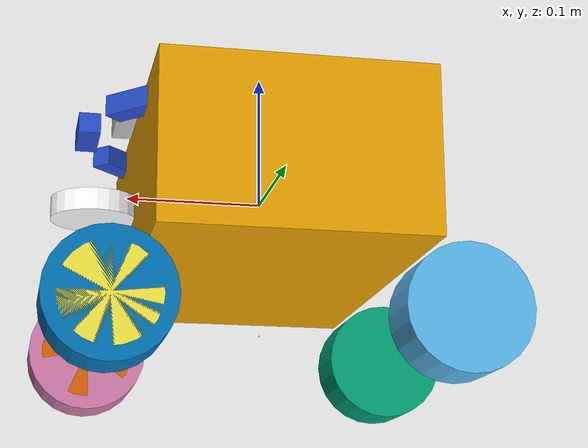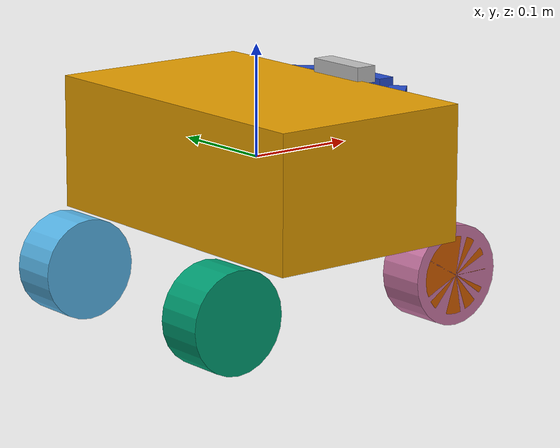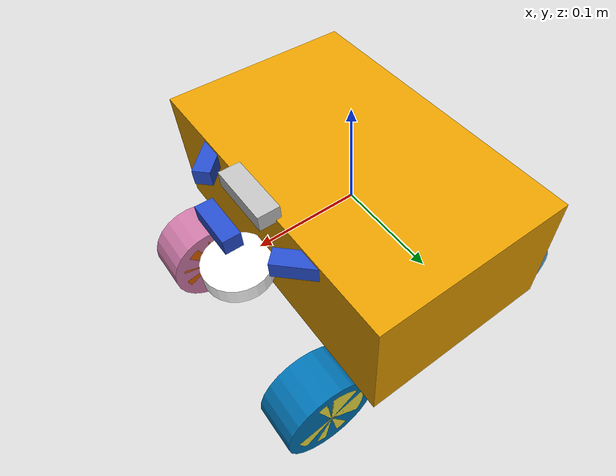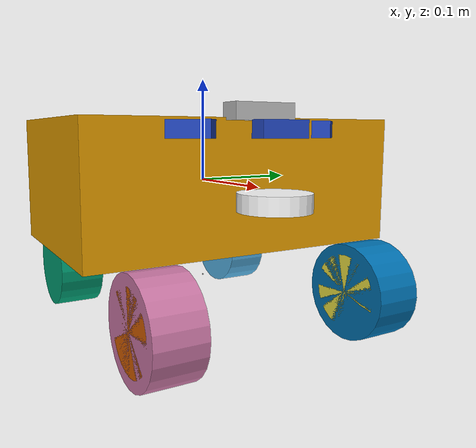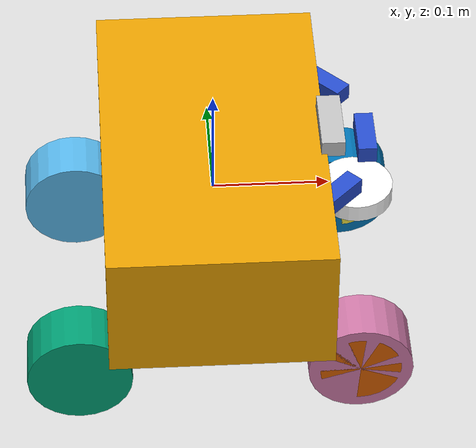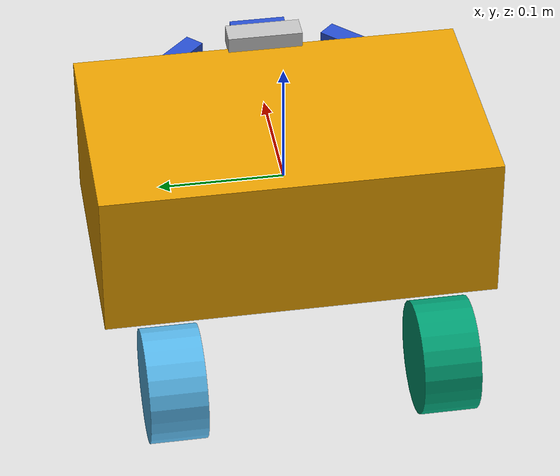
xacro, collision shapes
<?xml version="1.0"?>
<!--Auto: Zhui Li-->
<!--E-Mail: lz554113510@gmail.com -->
<!--Company: Institut für Intermodale Transport- und Logistiksysteme in Technische Universität Braunschweig -->

<robot name="limo_ackermann" xmlns:xacro="http://www.ros.org/wiki/xacro">

    <xacro:include filename="$(find limo_car)/gazebo/ackermann.xacro" />
    <xacro:include filename="$(find limo_car)/gazebo/sensor.xacro" />
    <xacro:limo_ackermann />
    <link name="base_footprint"/>
       <joint name="base_footprint_joint" type="fixed">
       <parent link="base_footprint"/>
       <child link="base_link"/>
       <origin xyz="0.0 0.0 0.0" rpy="0 0 0"/>
    </joint>

    <!-- ************************* Laser ****************************** -->
    <xacro:gazebo_laser frame_prefix="laser" />

    <joint name="laser_joint" type="fixed">
        <origin xyz="0.1236 0 -0.01" rpy="0 0 0"/>
        <parent link="base_link"/>
        <child link="laser_link"/>
    </joint>
    <!-- ************************* Depth-camera *********************** -->
    <xacro:gazebo_depth_camera frame_prefix="depth_camera" />

    <joint name="depth_camera_joint" type="fixed">
        <origin xyz="0.1 0 0.065" rpy="0 0 0"/>
        <parent link="base_link"/>
        <child link="depth_camera_link"/>
    </joint>
    <!-- ************************* IMU ******************************** -->
    <xacro:gazebo_imu frame_prefix="imu" />

    <joint name="imu_joint" type="fixed">
        <origin xyz="0.0 0 -0.1" rpy="0 0 0"/>
        <parent link="base_link"/>
        <child link="imu_link"/>
    </joint>
    <!-- ************************* Front Ultrasonic ******************* -->
    <xacro:gazebo_ultrasonic_front frame_prefix="ultrasonic_front" />
    <joint name="ultrasonic_front_joint" type="fixed">
        <origin xyz="0.13 0.0 0.05" rpy="0 0 0"/>
        <parent link="base_link"/>
        <child link="ultrasonic_front_link"/>
    </joint>

    <!-- ************************* Left Ultrasonic ******************* -->
    <xacro:gazebo_ultrasonic_left frame_prefix="ultrasonic_left" />
    <joint name="ultrasonic_left_joint" type="fixed">
        <origin xyz="0.10 0.07 0.05" rpy="0 0 0.7854"/>
        <parent link="base_link"/>
        <child link="ultrasonic_left_link"/>
    </joint>

    <!-- ************************* Right Ultrasonic ******************* -->
    <xacro:gazebo_ultrasonic_right frame_prefix="ultrasonic_right" />
    <joint name="ultrasonic_right_joint" type="fixed">
        <origin xyz="0.10 -0.07 0.05" rpy="0 0 -0.7854"/>
        <parent link="base_link"/>
        <child link="ultrasonic_right_link"/>
    </joint>
</robot>

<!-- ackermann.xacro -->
<!--Auto: Zhui Li-->
<!--E-Mail: lz554113510@gmail.com -->
<!--Company: Institut für Intermodale Transport- und Logistiksysteme in Technische Universität Braunschweig -->

<robot name="limo_ackermann" xmlns:xacro="http://www.ros.org/wiki/xacro">

    <!-- ******************************** Paramenten zu definieren ************************************* -->
    <!-- definiert Value -->
    <xacro:property name="M_PI" value="3.14159"/>

    <!-- das Value sind all gemessen -->
    <xacro:property name="base_mass" value="4.34"/>
    <xacro:property name="base_x_size" value="0.19" />
    <xacro:property name="base_y_size" value="0.31" />
    <xacro:property name="base_z_size" value="0.12" />

    <xacro:property name="wheelbase" value="0.24"/>
    <xacro:property name="track" value="0.168"/>
    <xacro:property name="wheel_vertical_offset" value="-0.10" />

    <xacro:property name="wheel_mass" value="0.5" />
    <xacro:property name="wheel_length" value="0.045" />
    <xacro:property name="wheel_radius" value="0.045" />

    <!-- definieren die Macro-Function für die Rechnungen der Matrizen für Trägheitsmoment-->
    <!-- Zylinder -->
    <xacro:macro name="cylinder_inertial_matrix" params="m r h">
        <inertial>
            <origin xyz="0.0 0.0 0.0" />
            <mass value="${m}" />
            <inertia ixx="${m*(3*r*r+h*h)/12}" ixy = "0" ixz = "0"
                     iyy="${m*(3*r*r+h*h)/12}" iyz = "0"
                     izz="${m*r*r/2}" />
        </inertial>
    </xacro:macro>
    <!-- Quader -->
    <xacro:macro name="box_inertial_matrix" params="m w l h">
        <inertial>
            <origin xyz="0.0 0.0 0.0" />
            <mass value="${m}" />
            <inertia ixx="${m*(w*w+h*h)/12}" ixy = "0" ixz = "0"
                     iyy="${m*(h*h+l*l)/12}" iyz = "0"
                     izz="${m*(w*w+l*l)/12}" />
        </inertial>
    </xacro:macro>

    <!-- **************************** Makrofunktion zu definieren ************************************** -->
    <!-- Makrofunktion für vorderen Räder mit Steuerscharnier-->
    <!-- front left -->
    <xacro:macro name="limo_left_steering_hinge" params="parent_prefix wheel_prefix *joint_pose">
        <link name="${wheel_prefix}_steer_link">
            <inertial>
                <!-- diese Daten kommen aus den Herstellern -->
                <mass value="0.25" />
                <inertia ixx="0.00525" ixy="0" ixz="0" iyy="0.00035" iyz="0" izz="0.00525" />
                <origin xyz="0 0 0" />
            </inertial>
            <visual>
                <origin xyz="0 0 0" rpy="0 0 0" />
                <geometry>
                    <!-- es ist sehr klein, einfach als Klein definiert wird -->
                    <cylinder length="0.0001" radius="0.0001" />
                </geometry>
            </visual>
            <collision>
                <origin xyz="0 ${wheel_length/2} 0" rpy="${M_PI/2} 0 0" />
                <geometry>
                    <cylinder length="${wheel_length}" radius="${wheel_radius-0.01}" />
                </geometry>
            </collision>
        </link>

        <joint name="${wheel_prefix}_steer_joint" type="revolute">
            <parent link="${parent_prefix}"/>
            <child link="${wheel_prefix}_steer_link"/>
            <xacro:insert_block name="joint_pose"/>
            <axis xyz="0 0 1" />
            <!-- Paramenten von Herstellern -->
            <limit lower="-0.523598767" upper="0.523598767" effort="5" velocity="0.5" />
            <dynamics damping="1.0" friction="2.0"/>
        </joint>

        <transmission name="${wheel_prefix}_hinge_trans" type="SimpleTransmission">
            <type>transmission_interface/SimpleTransmission</type>
            <actuator name="${wheel_prefix}_hinge_motor">
                <hardwareInterface>hardware_interface/EffortJointInterface</hardwareInterface>
                <mechanicalReduction>1</mechanicalReduction>
            </actuator>
            <joint name="${wheel_prefix}_steer_joint">
                <hardwareInterface>hardware_interface/EffortJointInterface</hardwareInterface>
            </joint>
        </transmission>

        <link name="${wheel_prefix}_wheel_link">
            <visual>
                <origin xyz="0 0 0" rpy="0 0 0" />
                <geometry>
                    <mesh filename="package://limo_car/meshes/limo_wheel.dae" scale="1.2 1.2 1.2"/>
                </geometry>
            </visual>
            <collision>
                <origin xyz="0 ${wheel_length/2} 0" rpy="${M_PI/2} 0 0" />
                <geometry>
                    <cylinder length="${wheel_length}" radius="${wheel_radius}" />
                </geometry>
            </collision>
            <xacro:cylinder_inertial_matrix  m="${wheel_mass}" r="${wheel_radius}"  h="${wheel_length}" />
        </link>

        <joint name="${wheel_prefix}_wheel_joint" type="continuous">
            <parent link="${wheel_prefix}_steer_link"/>
            <child link="${wheel_prefix}_wheel_link"/>
            <origin xyz="0 0 0" rpy="0 0 0" />
            <axis xyz="0 1 0"/>
        </joint>

        <transmission name="${wheel_prefix}_wheel_trans" type="SimpleTransmission">
            <type>transmission_interface/SimpleTransmission</type>
            <actuator name="${wheel_prefix}_wheel_motor">
                <!-- Type für den Topic(Paramenten) -->
                <hardwareInterface>hardware_interface/VelocityJointInterface</hardwareInterface>
                <mechanicalReduction>1</mechanicalReduction>
            </actuator>
            <joint name="${wheel_prefix}_wheel_joint">
                <hardwareInterface>hardware_interface/VelocityJointInterface</hardwareInterface>
            </joint>
        </transmission>
    </xacro:macro>

    <!-- front right -->
    <xacro:macro name="limo_right_steering_hinge" params="parent_prefix wheel_prefix *joint_pose">
        <link name="${wheel_prefix}_steer_link">
            <inertial>
                <mass value="0.25" />
                <inertia ixx="0.00525" ixy="0" ixz="0" iyy="0.00035" iyz="0" izz="0.00525" />
                <origin xyz="0 0 0" />
            </inertial>
            <visual>
                <origin xyz="0 0 0" rpy="0 0 0" />
                <geometry>
                    <cylinder length="0.0001" radius="0.0001" />
                </geometry>
            </visual>
            <collision>
                <origin xyz="0 ${wheel_length/2} 0" rpy="${M_PI/2} 0 0" />
                <geometry>
                    <cylinder length="${wheel_length}" radius="${wheel_radius-0.01}" />
                </geometry>
            </collision>
        </link>

        <joint name="${wheel_prefix}_steer_joint" type="revolute">
            <parent link="${parent_prefix}"/>
            <child link="${wheel_prefix}_steer_link"/>
            <xacro:insert_block name="joint_pose"/>
            <axis xyz="0 0 -1"/>
            <limit lower="-0.523598767" upper="0.523598767" effort="5" velocity="0.5" />
            <dynamics damping="1.0" friction="2.0"/>
        </joint>

        <transmission name="${wheel_prefix}_hinge_trans" type="SimpleTransmission">
            <type>transmission_interface/SimpleTransmission</type>
            <actuator name="${wheel_prefix}_hinge_motor">
                <hardwareInterface>hardware_interface/EffortJointInterface</hardwareInterface>
                <mechanicalReduction>1</mechanicalReduction>
            </actuator>
            <joint name="${wheel_prefix}_steer_joint">
                <hardwareInterface>hardware_interface/EffortJointInterface</hardwareInterface>
            </joint>
        </transmission>

        <link name="${wheel_prefix}_wheel_link">
            <visual>
                <origin xyz="0 0 0" rpy="0 0 0" />
                <geometry>
                    <mesh filename="package://limo_car/meshes/limo_wheel.dae" scale="1.2 1.2 1.2" />
                </geometry>
            </visual>
            <collision>
                <origin xyz="0 ${wheel_length/2} 0" rpy="${M_PI/2} 0 0" />
                <geometry>
                    <cylinder length="${wheel_length}" radius="${wheel_radius}" />
                </geometry>
            </collision>
            <xacro:cylinder_inertial_matrix  m="${wheel_mass}" r="${wheel_radius}"  h="${wheel_length}" />
        </link>

        <joint name="${wheel_prefix}_wheel_joint" type="continuous">
            <parent link="${wheel_prefix}_steer_link"/>
            <child link="${wheel_prefix}_wheel_link"/>
            <origin xyz="0 0 0" rpy="0 0  0" />
            <axis xyz="0 -1 0"/>
        </joint>

        <transmission name="${wheel_prefix}_wheel_trans" type="SimpleTransmission">
            <type>transmission_interface/SimpleTransmission</type>
            <actuator name="${wheel_prefix}_wheel_motor">
                <!-- Type für den Topic(Paramenten) -->
                <hardwareInterface>hardware_interface/VelocityJointInterface</hardwareInterface>
                <mechanicalReduction>1</mechanicalReduction>
            </actuator>
            <joint name="${wheel_prefix}_wheel_joint">
                <hardwareInterface>hardware_interface/VelocityJointInterface</hardwareInterface>
            </joint>
        </transmission>
    </xacro:macro>

    <!-- ***************************************** Base zu bauen *************************************** -->
    <!-- erstellt Hauptanteil des Modells, definiert ein Nullpunkt, um Modell aufzubauen. Es ist einfach für weitere
    Darstellungspostion in Simulation-Umgebung -->
    <xacro:macro name="limo_ackermann">

        <!-- herstellt base_link -->
        <link name="base_link">
            <visual>
                <origin xyz="0 0 -0.15" rpy="0 0 ${M_PI/2}" />
                <geometry>
                    <!-- Modell von Hersteller, aber es ist kleiner als realen Produkt, da die Skale vergrößert wird -->
                    <mesh filename="package://limo_car/meshes/limo_base.dae" scale="1.2 1.2 1.2" />
                </geometry>
            </visual>
            <!-- Modell für physikalische Kollision zu modellieren. -->
            <collision>
                <origin xyz="0 0 0" rpy="0 0 0" />
                <geometry>
                    <box size="${base_x_size} ${base_y_size} ${base_z_size}"/>
                </geometry>
            </collision>
            <xacro:box_inertial_matrix  m="${base_mass}" w="${base_x_size}" l="${base_y_size}" h="${base_z_size}" />
        </link>

        <gazebo reference="base_link">
            <material>
                <color rgba="0 0 0 0.5"/>
            </material>
        </gazebo>

        <!-- hinten Räder -->
        <link name="rear_left_wheel_link">
            <visual>
                <origin xyz="0 0 0" rpy="0 0 0" />
                <geometry>
                    <mesh filename="package://limo_car/meshes/limo_wheel.dae" scale="1.2 1.2 1.2"/>
                </geometry>
            </visual>
            <collision>
                <origin xyz="0 ${wheel_length/2} 0" rpy="${M_PI/2} 0 0" />
                <geometry>
                    <cylinder length="${wheel_length}" radius="${wheel_radius}" />
                </geometry>
            </collision>
            <xacro:cylinder_inertial_matrix  m="${wheel_mass}" r="${wheel_radius}" h="${wheel_length}"/>
        </link>

        <joint name="rear_left_wheel_joint" type="continuous">
            <parent link="base_link"/>
            <child link="rear_left_wheel_link"/>
            <origin xyz="${-wheelbase/2} ${track/2} ${wheel_vertical_offset}" rpy="0 0 0" />
            <axis xyz="0 1 0"/>
        </joint>

        <transmission name="rear_left_wheel_trans" type="SimpleTransmission">
            <type>transmission_interface/SimpleTransmission</type>
            <actuator name="rear_left_wheel_motor">
                <hardwareInterface>hardware_interface/VelocityJointInterface</hardwareInterface>
                <mechanicalReduction>1</mechanicalReduction>
            </actuator>
            <joint name="rear_left_wheel_joint">
                <hardwareInterface>hardware_interface/VelocityJointInterface</hardwareInterface>
            </joint>
        </transmission>

        <link name="rear_right_wheel_link">
            <visual>
                <origin xyz="0 0 0" rpy="0 0 0" />
                <geometry>
                    <mesh filename="package://limo_car/meshes/limo_wheel.dae" scale="1.2 1.2 1.2"/>
                </geometry>
            </visual>
            <collision>
                <origin xyz="0 ${wheel_length/2} 0" rpy="${M_PI/2} 0 0" />
                <geometry>
                    <cylinder length="${wheel_length}" radius="${wheel_radius}" />
                </geometry>
            </collision>
            <xacro:cylinder_inertial_matrix  m="${wheel_mass}" r="${wheel_radius}" h="${wheel_length}"/>
        </link>

        <joint name="rear_right_wheel_joint" type="continuous">
            <parent link="base_link"/>
            <child link="rear_right_wheel_link"/>
            <origin xyz="${-wheelbase/2} ${-track/2} ${wheel_vertical_offset}" rpy="${M_PI} 0 0" />
            <axis xyz="0 -1 0"/>
        </joint>

        <transmission name="rear_right_wheel_trans" type="SimpleTransmission">
            <type>transmission_interface/SimpleTransmission</type>
            <actuator name="rear_right_wheel_motor">
                <hardwareInterface>hardware_interface/VelocityJointInterface</hardwareInterface>
                <mechanicalReduction>1</mechanicalReduction>
            </actuator>
            <joint name="rear_right_wheel_joint">
                <hardwareInterface>hardware_interface/VelocityJointInterface</hardwareInterface>
            </joint>
        </transmission>

        <!-- ruft Steuerscharnier mit vorderem Räder auf -->
        <xacro:limo_left_steering_hinge parent_prefix="base_link" wheel_prefix="front_left">
            <origin xyz="${wheelbase/2} ${track/2} ${wheel_vertical_offset}" rpy="0 0 0" />
        </xacro:limo_left_steering_hinge>

        <xacro:limo_right_steering_hinge parent_prefix="base_link" wheel_prefix="front_right">
            <origin xyz="${wheelbase/2} ${-track/2} ${wheel_vertical_offset}" rpy="${M_PI} 0 0" />
        </xacro:limo_right_steering_hinge>

        <!-- ********************************** Kontrolle zu erstellen ************************************* -->
        <gazebo>
            <plugin name="gazebo_ros_control" filename="libgazebo_ros_control.so" />
            <plugin name="ackermann_controller" filename="libgazebo_ros_ackermann_drive.so">
                <update_rate>100</update_rate>
                <front_left_joint>front_left_wheel_joint</front_left_joint>
                <front_right_joint>front_right_wheel_joint</front_right_joint>
                <rear_left_joint>rear_left_wheel_joint</rear_left_joint>
                <rear_right_joint>rear_right_wheel_joint</rear_right_joint>
                <left_steering_joint>front_left_steer_joint</left_steering_joint>
                <right_steering_joint>front_right_steer_joint</right_steering_joint>
                <steering_wheel_joint>/</steering_wheel_joint>

                <left_steering_pid_gain>10000 100 10</left_steering_pid_gain>
                <left_steering_i_rang>0 0</left_steering_i_rang>
                <right_steering_pid_gain>10000 100 10</right_steering_pid_gain>
                <right_steering_i_rang>0 0</right_steering_i_rang>
                <linear_velocity_pid_gain>0.5 10 0.001</linear_velocity_pid_gain>
                <linear_velocity_i_range>0 0</linear_velocity_i_range>

                <max_steer>0.523598767</max_steer>

                <wheel_separation>0.172</wheel_separation>
                <wheel_diameter>0.09</wheel_diameter>
                <max_wheel_torque>20</max_wheel_torque>
                <max_wheel_acceleration>1.0</max_wheel_acceleration>
                <command_topic>cmd_vel</command_topic>
                <publish_odom>true</publish_odom>
                <publish_odom_tf>true</publish_odom_tf>
                <publish_wheel_tf>true</publish_wheel_tf>
                <odometry_topic>odom</odometry_topic>
                <odometry_frame>odom</odometry_frame>
                <robot_base_frame>base_footprint</robot_base_frame>
                <odometry_source>1</odometry_source>
            </plugin>
        </gazebo>
    </xacro:macro>
</robot>

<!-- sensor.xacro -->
<!-- Autor: Zhui Li -->
<!--E-Mail: lz554113510@gmail.com -->
<!--Company: Institut für Intermodale Transport- und Logistiksysteme in Technische Universität Braunschweig -->

<robot name="limo_sensor" xmlns:xacro="http://www.ros.org/wiki/xacro">

    <!-- ******************************* Makrofunktion für Laser-Sensor ***************************** -->
    <xacro:macro name="gazebo_laser" params="frame_prefix">
        <link name='${frame_prefix}_link'>
            <inertial>
                <mass value="0.1"/>
                <origin xyz="0.0 0 0" rpy="0 0 0"/>
                <inertia
                        ixx="1e-6" ixy="0" ixz="0"
                        iyy="1e-6" iyz="0"
                        izz="1e-6"
                />
            </inertial>
            <visual name='laser_visual'>
                <origin xyz="0 0 0" rpy="0 0 0"/>
                <geometry>
                    <cylinder radius="0.02" length="0.01"/>
                </geometry>
                <material name='laser_material'>
                    <color rgba="1 1 1 1" />
                    <ambient>0.1 0.1 0.1 1</ambient>
                    <diffuse>0.1 0.1 0.2 1</diffuse>
                    <specular>0 0 0 0</specular>
                    <emissive>0 0 0 1</emissive>
                </material>
            </visual>
            <collision name='laser_collision'>
                <origin xyz="0 0 0" rpy="0 0 0"/>
                <geometry>
                    <cylinder radius="0.032" length="0.016"/>
                </geometry>
            </collision>
        </link>

        <gazebo reference="${frame_prefix}_link">
            <sensor type="ray" name="laser_sensor">
                <visualize>false</visualize>
                <update_rate>8</update_rate>
                <ray>
                    <scan>
                        <horizontal>
                            <samples>720</samples>
                            <resolution>1</resolution>
                            <min_angle>-2.09439504</min_angle> <!-- Einheit in "rad", von Hersteller -->
                            <max_angle>2.09439504</max_angle>
                        </horizontal>
                    </scan>
                    <range>
                        <min>0.2</min>
                        <max>8.0</max>
                        <resolution>0.01</resolution>
                    </range>
                    <!-- um bessere Realität zu simulieren, wird Rauschen auch addiert -->
                    <noise>
                        <type>gaussian</type>
                        <mean>0.0</mean>
                        <stddev>0.01</stddev>
                    </noise>
                </ray>
                <plugin name="gazebo_ros_laser_sensor" filename="libgazebo_ros_ray_sensor.so">
                    <ros>
                        <namespace>/</namespace>
                        <remapping>~/out:=scan</remapping>
                    </ros>
                    <output_type>sensor_msgs/LaserScan</output_type>
                    <min_intensity>150.0</min_intensity>
                </plugin>
            </sensor>
        </gazebo>
    </xacro:macro>

    <!-- ******************************* Makrofunktion für Depth-Camera ***************************** -->
    <xacro:macro name="gazebo_depth_camera" params="frame_prefix">
        <link name='${frame_prefix}_link'>
            <origin xyz="0 0 0" rpy="0 0 0"/>
            <inertial>
                <mass value="0.1"/>
                <origin xyz="0.0 0 0" rpy="0 0 0"/>
                <inertia
                        ixx="1e-6" ixy="0" ixz="0"
                        iyy="1e-6" iyz="0"
                        izz="1e-6"
                />
            </inertial>
            <visual name='depth_camera_visual'>
                <origin xyz="0 0 0" rpy="0 0 0"/>
                <geometry>
                    <box size="0.02 0.06 0.015"/>
                </geometry>
                <material name='depth_camera_material'>
                    <color rgba="0.75 0.75 0.75 1" />
                    <ambient>0.1 0.1 0.1 1</ambient>
                    <diffuse>0.1 0.1 0.2 1</diffuse>
                    <specular>0 0 0 0</specular>
                    <emissive>0 0 0 1</emissive>
                </material>
            </visual>
            <collision name='depth_camera_collision'>
                <origin xyz="0 0 0" rpy="0 0 0"/>
                <geometry>
                    <box size="0.02 0.06 0.015"/>
                </geometry>
            </collision>
        </link>

        <link name="depth_link" />

        <joint name="${frame_prefix}_to_camera_joint" type="fixed">
            <origin xyz="0 0 0" rpy="-1.570796 0 -1.570796 "/>
            <parent link="${frame_prefix}_link"/>
            <child link="depth_link"/>
        </joint>

        <gazebo reference="${frame_prefix}_link">
            <sensor name="sensor_camera" type="depth">
                <pose>0.0 0.0 0.0 0.0 0.0 0.0</pose>
                <always_on>true</always_on>
                <visualize>true</visualize>
                <update_rate>10.0</update_rate>
                <camera name="head">
                    <horizontal_fov>1.3962634</horizontal_fov> <!-- 60*pi/180 -->
                    <!-- normalisieren die Form für Fotos -->
                    <image>
                        <width>640</width>
                        <height>480</height>
                        <format>R8G8B8</format>
                    </image>
                    <clip>
                        <near>0.15</near>
                        <far>8.0</far>
                    </clip>
                </camera>
                <plugin name="gazebo_ros_depth_camera_sensor" filename="libgazebo_ros_camera.so">
                    <ros>
                        <remapping>${frame_prefix}/image_raw:=rgb/image_raw</remapping>
                        <remapping>${frame_prefix}/image_depth:=depth/image_raw</remapping>
                        <remapping>${frame_prefix}/camera_info:=rgb/camera_info</remapping>
                        <remapping>${frame_prefix}/camera_info_depth:=depth/camera_info</remapping>
                        <remapping>${frame_prefix}/points:=depth/points</remapping>
                    </ros>
                    <camera_name>${frame_prefix}</camera_name>
                    <frame_name>${frame_prefix}_frame_optical</frame_name>
                    <hack_baseline>0.07</hack_baseline>
                    <min_depth>0.001</min_depth>
                    <max_depth>300.0</max_depth>
                </plugin>
            </sensor>
        </gazebo>
    </xacro:macro>

    <!-- ******************************* Makrofunktion für IMU ***************************** -->
    <xacro:macro name="gazebo_imu" params="frame_prefix">
        <link name='${frame_prefix}_link'>
            <pose>0 0 0 0 0 0</pose>
            <inertial>
                <mass value="0.01"/>
                <origin xyz="0.0 0 0" rpy="0 0 0"/>
                <inertia
                        ixx="1e-7" ixy="0" ixz="0"
                        iyy="1e-7" iyz="0"
                        izz="1e-7"
                />
            </inertial>
            <visual name='imu_visual'>
                <origin xyz="0 0 0" rpy="0 0 0"/>
                <geometry>
                    <box size="0.001 0.001 0.001"/>
                </geometry>
                <material name='imu_material'>
                    <color rgba="0.75 0.75 0.75 1" />
                    <ambient>0.1 0.1 0.1 1</ambient>
                    <diffuse>0.1 0.1 0.2 1</diffuse>
                    <specular>0 0 0 0</specular>
                    <emissive>0 0 0 1</emissive>
                </material>
            </visual>
            <collision name='imu_collision'>
                <origin xyz="0 0 0" rpy="0 0 0"/>
                <geometry>
                    <box size="0.001 0.001 0.001"/>
                </geometry>
            </collision>
        </link>

        <gazebo reference="${frame_prefix}_link">
            <gravity>true</gravity>
            <sensor name="imu_sensor" type="imu">
                <always_on>true</always_on>
                <update_rate>100</update_rate>
                <visualize>true</visualize>
                <topic>__default_topic__</topic>
                <pose>0 0 0 0 0 0</pose>

                <plugin filename="libgazebo_ros_imu_sensor.so" name="imu_plugin">
                    <topicName>/limo/imu</topicName>
                    <bodyName>${frame_prefix}_link</bodyName>
                    <updateRateHZ>100.0</updateRateHZ>
                    <gaussianNoise>0.001</gaussianNoise>
                    <xyzOffset>0 0 0</xyzOffset>
                    <rpyOffset>0 0 0</rpyOffset>
                    <frameName>${frame_prefix}_link</frameName>
                </plugin>
            </sensor>
        </gazebo>
    </xacro:macro>
    <!-- ************************* Front Ultrasonic ******************* -->
    <xacro:macro name="gazebo_ultrasonic_front" params="frame_prefix">
        <link name="${frame_prefix}_link">
            <inertial>
                <mass value="0.02"/>
                <origin xyz="0 0 0" rpy="0 0 0"/>
                <inertia ixx="1e-6" ixy="0" ixz="0"
                         iyy="1e-6" iyz="0"
                         izz="1e-6"/>
            </inertial>
            <visual>
                <origin xyz="0 0 0" rpy="0 0 0"/>
                <geometry>
                    <box size="0.016 0.045 0.015"/>
                </geometry>
            </visual>
            <collision>
                <origin xyz="0 0 0" rpy="0 0 0"/>
                <geometry>
                    <box size="0.016 0.045 0.015"/>
                </geometry>
            </collision>
        </link>
        <gazebo reference="${frame_prefix}_link">
            <material>Gazebo/Blue</material>
            <sensor name="${frame_prefix}_sensor" type="ray">
                <always_on>true</always_on>
                <update_rate>10</update_rate>
                <visualize>true</visualize>
                <ray>
                    <scan>
                        <horizontal>
                            <samples>5</samples>
                            <resolution>1</resolution>
                            <min_angle>-0.2618</min_angle>
                            <max_angle>0.2618</max_angle>
                        </horizontal>
                    </scan>
                    <range>
                        <min>0.02</min>
                        <max>4.0</max>
                        <resolution>0.01</resolution>
                    </range>
                    <noise>
                        <type>gaussian</type>
                        <mean>0.0</mean>
                        <stddev>0.005</stddev>
                    </noise>
                </ray>
                <plugin name="front_ultrasonic_plugin" filename="libgazebo_ros_ray_sensor.so">
                    <ros>
                        <remapping>~/out:=/ultrasonic_front</remapping>
                    </ros>
                    <output_type>sensor_msgs/Range</output_type>
                    <radiation_type>ultrasound</radiation_type>
                    <frame_name>${frame_prefix}_link</frame_name>
                </plugin>
            </sensor>
        </gazebo>
    </xacro:macro>
    <xacro:macro name="gazebo_ultrasonic_left" params="frame_prefix">
        <link name="${frame_prefix}_link">
            <inertial>
                <mass value="0.02"/>
                <origin xyz="0 0 0" rpy="0 0 0"/>
                <inertia ixx="1e-6" ixy="0" ixz="0"
                         iyy="1e-6" iyz="0"
                         izz="1e-6"/>
            </inertial>
            <visual>
                <origin xyz="0 0 0" rpy="0 0 0"/>
                <geometry>
                    <box size="0.016 0.045 0.015"/>
                </geometry>
            </visual>
            <collision>
                <origin xyz="0 0 0" rpy="0 0 0"/>
                <geometry>
                    <box size="0.016 0.045 0.015"/>
                </geometry>
            </collision>
        </link>
        <gazebo reference="${frame_prefix}_link">
            <material>Gazebo/Blue</material>
            <sensor name="${frame_prefix}_sensor" type="ray">
                <always_on>true</always_on>
                <update_rate>10</update_rate>
                <visualize>true</visualize>
                <ray>
                    <scan>
                        <horizontal>
                            <samples>5</samples>
                            <resolution>1</resolution>
                            <min_angle>-0.2618</min_angle>
                            <max_angle>0.2618</max_angle>
                        </horizontal>
                    </scan>
                    <range>
                        <min>0.02</min>
                        <max>4.0</max>
                        <resolution>0.01</resolution>
                    </range>
                    <noise>
                        <type>gaussian</type>
                        <mean>0.0</mean>
                        <stddev>0.005</stddev>
                    </noise>
                </ray>
                <plugin name="left_ultrasonic_plugin" filename="libgazebo_ros_ray_sensor.so">
                    <ros>
                        <remapping>~/out:=/ultrasonic_left</remapping>
                    </ros>
                    <output_type>sensor_msgs/Range</output_type>
                    <radiation_type>ultrasound</radiation_type>
                    <frame_name>${frame_prefix}_link</frame_name>
                </plugin>
            </sensor>
        </gazebo>
    </xacro:macro>

    <xacro:macro name="gazebo_ultrasonic_right" params="frame_prefix">
        <link name="${frame_prefix}_link">
            <inertial>
                <mass value="0.02"/>
                <origin xyz="0 0 0" rpy="0 0 0"/>
                <inertia ixx="1e-6" ixy="0" ixz="0"
                         iyy="1e-6" iyz="0"
                         izz="1e-6"/>
            </inertial>
            <visual>
                <origin xyz="0 0 0" rpy="0 0 0"/>
                <geometry>
                    <box size="0.016 0.045 0.015"/>
                </geometry>
            </visual>
            <collision>
                <origin xyz="0 0 0" rpy="0 0 0"/>
                <geometry>
                    <box size="0.016 0.045 0.015"/>
                </geometry>
            </collision>
        </link>
        <gazebo reference="${frame_prefix}_link">
            <material>Gazebo/Blue</material>
            <sensor name="${frame_prefix}_sensor" type="ray">
                <always_on>true</always_on>
                <update_rate>10</update_rate>
                <visualize>true</visualize>
                <ray>
                    <scan>
                        <horizontal>
                            <samples>5</samples>
                            <resolution>1</resolution>
                            <min_angle>-0.2618</min_angle>
                            <max_angle>0.2618</max_angle>
                        </horizontal>
                    </scan>
                    <range>
                        <min>0.02</min>
                        <max>4.0</max>
                        <resolution>0.01</resolution>
                    </range>
                    <noise>
                        <type>gaussian</type>
                        <mean>0.0</mean>
                        <stddev>0.005</stddev>
                    </noise>
                </ray>
                <plugin name="right_ultrasonic_plugin" filename="libgazebo_ros_ray_sensor.so">
                    <ros>
                        <remapping>~/out:=/ultrasonic_right</remapping>
                    </ros>
                    <output_type>sensor_msgs/Range</output_type>
                    <radiation_type>ultrasound</radiation_type>
                    <frame_name>${frame_prefix}_link</frame_name>
                </plugin>
            </sensor>
        </gazebo>
    </xacro:macro>
</robot>
